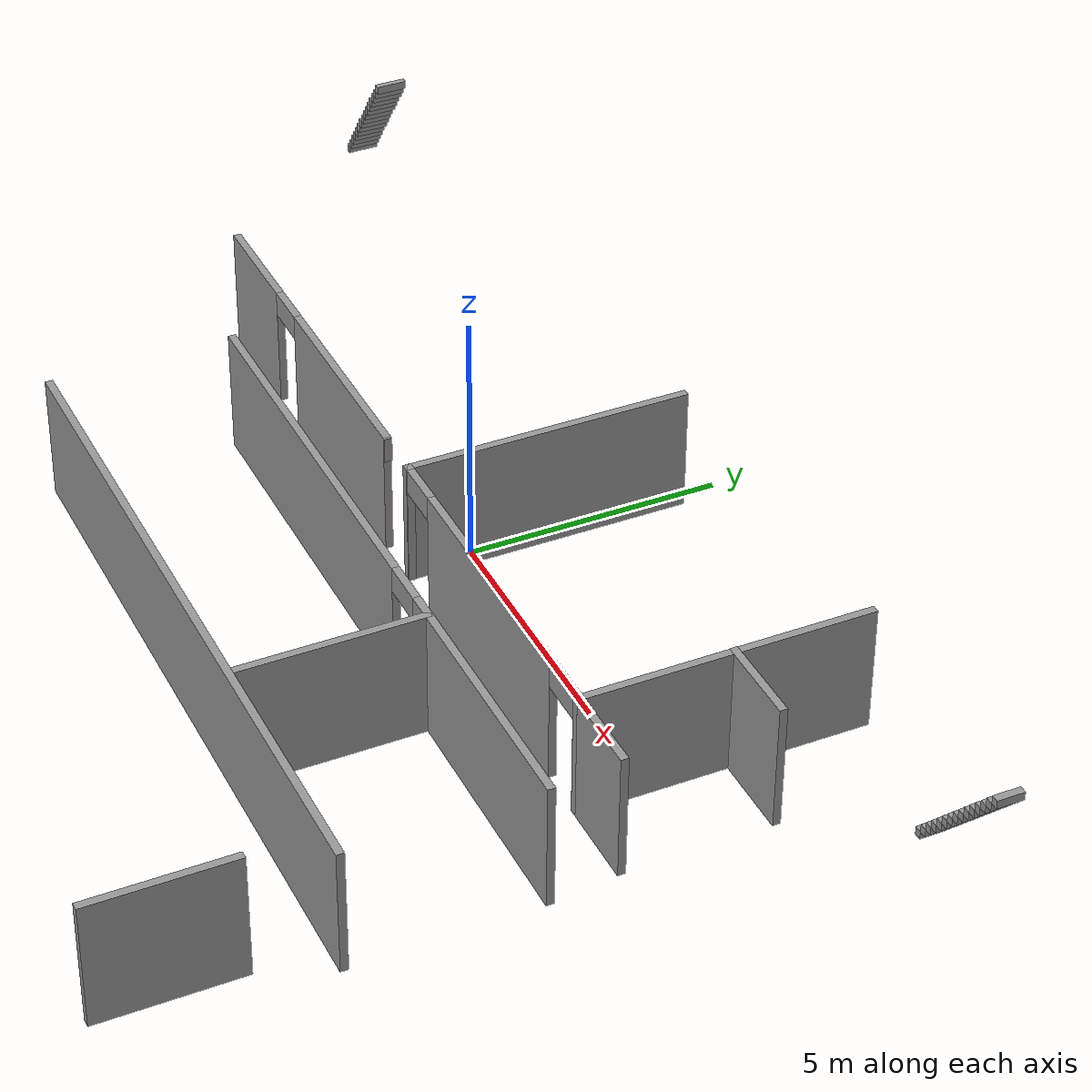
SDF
<sdf version="1.6">
 <model name="deh_f1">
  <pose>-0.995568 -3.05257 0 0 -0 0</pose>
  <link name="Stairs_1">
   <visual name="Stairs_1_Visual_0">
    <pose>-13.1163 6.81612 0.083333 0 -0 1.5708</pose>
    <geometry><box><size>0.63499 0.119775 0.166667</size></box></geometry>
    <material>
     <script><uri>file://media/materials/scripts/gazebo.material</uri><name>Gazebo/Grey</name></script>
     <ambient>1 1 1 1</ambient>
    </material>
   </visual>
   <collision name="Stairs_1_Collision_0">
    <geometry><box><size>0.63499 0.119775 0.166667</size></box></geometry>
    <pose>-13.1163 6.81612 0.083333 0 -0 1.5708</pose>
   </collision>
   <visual name="Stairs_1_Visual_1">
    <pose>-12.9965 6.81612 0.25 0 -0 1.5708</pose>
    <geometry><box><size>0.63499 0.119775 0.166667</size></box></geometry>
    <material>
     <script><uri>file://media/materials/scripts/gazebo.material</uri><name>Gazebo/Grey</name></script>
     <ambient>1 1 1 1</ambient>
    </material>
   </visual>
   <collision name="Stairs_1_Collision_1">
    <geometry><box><size>0.63499 0.119775 0.166667</size></box></geometry>
    <pose>-12.9965 6.81612 0.25 0 -0 1.5708</pose>
   </collision>
   <visual name="Stairs_1_Visual_2">
    <pose>-12.8767 6.81612 0.416667 0 -0 1.5708</pose>
    <geometry><box><size>0.63499 0.119775 0.166667</size></box></geometry>
    <material>
     <script><uri>file://media/materials/scripts/gazebo.material</uri><name>Gazebo/Grey</name></script>
     <ambient>1 1 1 1</ambient>
    </material>
   </visual>
   <collision name="Stairs_1_Collision_2">
    <geometry><box><size>0.63499 0.119775 0.166667</size></box></geometry>
    <pose>-12.8767 6.81612 0.416667 0 -0 1.5708</pose>
   </collision>
   <visual name="Stairs_1_Visual_3">
    <pose>-12.757 6.81612 0.583333 0 -0 1.5708</pose>
    <geometry><box><size>0.63499 0.119775 0.166667</size></box></geometry>
    <material>
     <script><uri>file://media/materials/scripts/gazebo.material</uri><name>Gazebo/Grey</name></script>
     <ambient>1 1 1 1</ambient>
    </material>
   </visual>
   <collision name="Stairs_1_Collision_3">
    <geometry><box><size>0.63499 0.119775 0.166667</size></box></geometry>
    <pose>-12.757 6.81612 0.583333 0 -0 1.5708</pose>
   </collision>
   <visual name="Stairs_1_Visual_4">
    <pose>-12.6372 6.81612 0.75 0 -0 1.5708</pose>
    <geometry><box><size>0.63499 0.119775 0.166667</size></box></geometry>
    <material>
     <script><uri>file://media/materials/scripts/gazebo.material</uri><name>Gazebo/Grey</name></script>
     <ambient>1 1 1 1</ambient>
    </material>
   </visual>
   <collision name="Stairs_1_Collision_4">
    <geometry><box><size>0.63499 0.119775 0.166667</size></box></geometry>
    <pose>-12.6372 6.81612 0.75 0 -0 1.5708</pose>
   </collision>
   <visual name="Stairs_1_Visual_5">
    <pose>-12.5174 6.81612 0.916667 0 -0 1.5708</pose>
    <geometry><box><size>0.63499 0.119775 0.166667</size></box></geometry>
    <material>
     <script><uri>file://media/materials/scripts/gazebo.material</uri><name>Gazebo/Grey</name></script>
     <ambient>1 1 1 1</ambient>
    </material>
   </visual>
   <collision name="Stairs_1_Collision_5">
    <geometry><box><size>0.63499 0.119775 0.166667</size></box></geometry>
    <pose>-12.5174 6.81612 0.916667 0 -0 1.5708</pose>
   </collision>
   <visual name="Stairs_1_Visual_6">
    <pose>-12.3976 6.81612 1.08333 0 -0 1.5708</pose>
    <geometry><box><size>0.63499 0.119775 0.166667</size></box></geometry>
    <material>
     <script><uri>file://media/materials/scripts/gazebo.material</uri><name>Gazebo/Grey</name></script>
     <ambient>1 1 1 1</ambient>
    </material>
   </visual>
   <collision name="Stairs_1_Collision_6">
    <geometry><box><size>0.63499 0.119775 0.166667</size></box></geometry>
    <pose>-12.3976 6.81612 1.08333 0 -0 1.5708</pose>
   </collision>
   <visual name="Stairs_1_Visual_7">
    <pose>-12.2779 6.81612 1.25 0 -0 1.5708</pose>
    <geometry><box><size>0.63499 0.119775 0.166667</size></box></geometry>
    <material>
     <script><uri>file://media/materials/scripts/gazebo.material</uri><name>Gazebo/Grey</name></script>
     <ambient>1 1 1 1</ambient>
    </material>
   </visual>
   <collision name="Stairs_1_Collision_7">
    <geometry><box><size>0.63499 0.119775 0.166667</size></box></geometry>
    <pose>-12.2779 6.81612 1.25 0 -0 1.5708</pose>
   </collision>
   <visual name="Stairs_1_Visual_8">
    <pose>-12.1581 6.81612 1.41667 0 -0 1.5708</pose>
    <geometry><box><size>0.63499 0.119775 0.166667</size></box></geometry>
    <material>
     <script><uri>file://media/materials/scripts/gazebo.material</uri><name>Gazebo/Grey</name></script>
     <ambient>1 1 1 1</ambient>
    </material>
   </visual>
   <collision name="Stairs_1_Collision_8">
    <geometry><box><size>0.63499 0.119775 0.166667</size></box></geometry>
    <pose>-12.1581 6.81612 1.41667 0 -0 1.5708</pose>
   </collision>
   <visual name="Stairs_1_Visual_9">
    <pose>-12.0383 6.81612 1.58333 0 -0 1.5708</pose>
    <geometry><box><size>0.63499 0.119775 0.166667</size></box></geometry>
    <material>
     <script><uri>file://media/materials/scripts/gazebo.material</uri><name>Gazebo/Grey</name></script>
     <ambient>1 1 1 1</ambient>
    </material>
   </visual>
   <collision name="Stairs_1_Collision_9">
    <geometry><box><size>0.63499 0.119775 0.166667</size></box></geometry>
    <pose>-12.0383 6.81612 1.58333 0 -0 1.5708</pose>
   </collision>
   <visual name="Stairs_1_Visual_10">
    <pose>-11.9185 6.81612 1.75 0 -0 1.5708</pose>
    <geometry><box><size>0.63499 0.119775 0.166667</size></box></geometry>
    <material>
     <script><uri>file://media/materials/scripts/gazebo.material</uri><name>Gazebo/Grey</name></script>
     <ambient>1 1 1 1</ambient>
    </material>
   </visual>
   <collision name="Stairs_1_Collision_10">
    <geometry><box><size>0.63499 0.119775 0.166667</size></box></geometry>
    <pose>-11.9185 6.81612 1.75 0 -0 1.5708</pose>
   </collision>
   <visual name="Stairs_1_Visual_11">
    <pose>-11.7988 6.81612 1.91667 0 -0 1.5708</pose>
    <geometry><box><size>0.63499 0.119775 0.166667</size></box></geometry>
    <material>
     <script><uri>file://media/materials/scripts/gazebo.material</uri><name>Gazebo/Grey</name></script>
     <ambient>1 1 1 1</ambient>
    </material>
   </visual>
   <collision name="Stairs_1_Collision_11">
    <geometry><box><size>0.63499 0.119775 0.166667</size></box></geometry>
    <pose>-11.7988 6.81612 1.91667 0 -0 1.5708</pose>
   </collision>
   <visual name="Stairs_1_Visual_12">
    <pose>-11.679 6.81612 2.08333 0 -0 1.5708</pose>
    <geometry><box><size>0.63499 0.119775 0.166667</size></box></geometry>
    <material>
     <script><uri>file://media/materials/scripts/gazebo.material</uri><name>Gazebo/Grey</name></script>
     <ambient>1 1 1 1</ambient>
    </material>
   </visual>
   <collision name="Stairs_1_Collision_12">
    <geometry><box><size>0.63499 0.119775 0.166667</size></box></geometry>
    <pose>-11.679 6.81612 2.08333 0 -0 1.5708</pose>
   </collision>
   <visual name="Stairs_1_Visual_13">
    <pose>-11.5592 6.81612 2.25 0 -0 1.5708</pose>
    <geometry><box><size>0.63499 0.119775 0.166667</size></box></geometry>
    <material>
     <script><uri>file://media/materials/scripts/gazebo.material</uri><name>Gazebo/Grey</name></script>
     <ambient>1 1 1 1</ambient>
    </material>
   </visual>
   <collision name="Stairs_1_Collision_13">
    <geometry><box><size>0.63499 0.119775 0.166667</size></box></geometry>
    <pose>-11.5592 6.81612 2.25 0 -0 1.5708</pose>
   </collision>
   <visual name="Stairs_1_Visual_14">
    <pose>-11.4394 6.81612 2.41667 0 -0 1.5708</pose>
    <geometry><box><size>0.63499 0.119775 0.166667</size></box></geometry>
    <material>
     <script><uri>file://media/materials/scripts/gazebo.material</uri><name>Gazebo/Grey</name></script>
     <ambient>1 1 1 1</ambient>
    </material>
   </visual>
   <collision name="Stairs_1_Collision_14">
    <geometry><box><size>0.63499 0.119775 0.166667</size></box></geometry>
    <pose>-11.4394 6.81612 2.41667 0 -0 1.5708</pose>
   </collision>
  </link>
  <link name="Stairs_2">
   <visual name="Stairs_2_Visual_0">
    <pose>11.0741 6.86907 0.083333 0 -0 1.5708</pose>
    <geometry><box><size>0.520025 0.144952 0.166667</size></box></geometry>
    <material>
     <script><uri>file://media/materials/scripts/gazebo.material</uri><name>Gazebo/Grey</name></script>
     <ambient>1 1 1 1</ambient>
    </material>
   </visual>
   <collision name="Stairs_2_Collision_0">
    <geometry><box><size>0.520025 0.144952 0.166667</size></box></geometry>
    <pose>11.0741 6.86907 0.083333 0 -0 1.5708</pose>
   </collision>
   <visual name="Stairs_2_Visual_1">
    <pose>11.219 6.86907 0.25 0 -0 1.5708</pose>
    <geometry><box><size>0.520025 0.144952 0.166667</size></box></geometry>
    <material>
     <script><uri>file://media/materials/scripts/gazebo.material</uri><name>Gazebo/Grey</name></script>
     <ambient>1 1 1 1</ambient>
    </material>
   </visual>
   <collision name="Stairs_2_Collision_1">
    <geometry><box><size>0.520025 0.144952 0.166667</size></box></geometry>
    <pose>11.219 6.86907 0.25 0 -0 1.5708</pose>
   </collision>
   <visual name="Stairs_2_Visual_2">
    <pose>11.364 6.86907 0.416667 0 -0 1.5708</pose>
    <geometry><box><size>0.520025 0.144952 0.166667</size></box></geometry>
    <material>
     <script><uri>file://media/materials/scripts/gazebo.material</uri><name>Gazebo/Grey</name></script>
     <ambient>1 1 1 1</ambient>
    </material>
   </visual>
   <collision name="Stairs_2_Collision_2">
    <geometry><box><size>0.520025 0.144952 0.166667</size></box></geometry>
    <pose>11.364 6.86907 0.416667 0 -0 1.5708</pose>
   </collision>
   <visual name="Stairs_2_Visual_3">
    <pose>11.5089 6.86907 0.583333 0 -0 1.5708</pose>
    <geometry><box><size>0.520025 0.144952 0.166667</size></box></geometry>
    <material>
     <script><uri>file://media/materials/scripts/gazebo.material</uri><name>Gazebo/Grey</name></script>
     <ambient>1 1 1 1</ambient>
    </material>
   </visual>
   <collision name="Stairs_2_Collision_3">
    <geometry><box><size>0.520025 0.144952 0.166667</size></box></geometry>
    <pose>11.5089 6.86907 0.583333 0 -0 1.5708</pose>
   </collision>
   <visual name="Stairs_2_Visual_4">
    <pose>11.6539 6.86907 0.75 0 -0 1.5708</pose>
    <geometry><box><size>0.520025 0.144952 0.166667</size></box></geometry>
    <material>
     <script><uri>file://media/materials/scripts/gazebo.material</uri><name>Gazebo/Grey</name></script>
     <ambient>1 1 1 1</ambient>
    </material>
   </visual>
   <collision name="Stairs_2_Collision_4">
    <geometry><box><size>0.520025 0.144952 0.166667</size></box></geometry>
    <pose>11.6539 6.86907 0.75 0 -0 1.5708</pose>
   </collision>
   <visual name="Stairs_2_Visual_5">
    <pose>11.7988 6.86907 0.916667 0 -0 1.5708</pose>
    <geometry><box><size>0.520025 0.144952 0.166667</size></box></geometry>
    <material>
     <script><uri>file://media/materials/scripts/gazebo.material</uri><name>Gazebo/Grey</name></script>
     <ambient>1 1 1 1</ambient>
    </material>
   </visual>
   <collision name="Stairs_2_Collision_5">
    <geometry><box><size>0.520025 0.144952 0.166667</size></box></geometry>
    <pose>11.7988 6.86907 0.916667 0 -0 1.5708</pose>
   </collision>
   <visual name="Stairs_2_Visual_6">
    <pose>11.9438 6.86907 1.08333 0 -0 1.5708</pose>
    <geometry><box><size>0.520025 0.144952 0.166667</size></box></geometry>
    <material>
     <script><uri>file://media/materials/scripts/gazebo.material</uri><name>Gazebo/Grey</name></script>
     <ambient>1 1 1 1</ambient>
    </material>
   </visual>
   <collision name="Stairs_2_Collision_6">
    <geometry><box><size>0.520025 0.144952 0.166667</size></box></geometry>
    <pose>11.9438 6.86907 1.08333 0 -0 1.5708</pose>
   </collision>
   <visual name="Stairs_2_Visual_7">
    <pose>12.0887 6.86907 1.25 0 -0 1.5708</pose>
    <geometry><box><size>0.520025 0.144952 0.166667</size></box></geometry>
    <material>
     <script><uri>file://media/materials/scripts/gazebo.material</uri><name>Gazebo/Grey</name></script>
     <ambient>1 1 1 1</ambient>
    </material>
   </visual>
   <collision name="Stairs_2_Collision_7">
    <geometry><box><size>0.520025 0.144952 0.166667</size></box></geometry>
    <pose>12.0887 6.86907 1.25 0 -0 1.5708</pose>
   </collision>
   <visual name="Stairs_2_Visual_8">
    <pose>12.2337 6.86907 1.41667 0 -0 1.5708</pose>
    <geometry><box><size>0.520025 0.144952 0.166667</size></box></geometry>
    <material>
     <script><uri>file://media/materials/scripts/gazebo.material</uri><name>Gazebo/Grey</name></script>
     <ambient>1 1 1 1</ambient>
    </material>
   </visual>
   <collision name="Stairs_2_Collision_8">
    <geometry><box><size>0.520025 0.144952 0.166667</size></box></geometry>
    <pose>12.2337 6.86907 1.41667 0 -0 1.5708</pose>
   </collision>
   <visual name="Stairs_2_Visual_9">
    <pose>12.3786 6.86907 1.58333 0 -0 1.5708</pose>
    <geometry><box><size>0.520025 0.144952 0.166667</size></box></geometry>
    <material>
     <script><uri>file://media/materials/scripts/gazebo.material</uri><name>Gazebo/Grey</name></script>
     <ambient>1 1 1 1</ambient>
    </material>
   </visual>
   <collision name="Stairs_2_Collision_9">
    <geometry><box><size>0.520025 0.144952 0.166667</size></box></geometry>
    <pose>12.3786 6.86907 1.58333 0 -0 1.5708</pose>
   </collision>
   <visual name="Stairs_2_Visual_10">
    <pose>12.5236 6.86907 1.75 0 -0 1.5708</pose>
    <geometry><box><size>0.520025 0.144952 0.166667</size></box></geometry>
    <material>
     <script><uri>file://media/materials/scripts/gazebo.material</uri><name>Gazebo/Grey</name></script>
     <ambient>1 1 1 1</ambient>
    </material>
   </visual>
   <collision name="Stairs_2_Collision_10">
    <geometry><box><size>0.520025 0.144952 0.166667</size></box></geometry>
    <pose>12.5236 6.86907 1.75 0 -0 1.5708</pose>
   </collision>
   <visual name="Stairs_2_Visual_11">
    <pose>12.6685 6.86907 1.91667 0 -0 1.5708</pose>
    <geometry><box><size>0.520025 0.144952 0.166667</size></box></geometry>
    <material>
     <script><uri>file://media/materials/scripts/gazebo.material</uri><name>Gazebo/Grey</name></script>
     <ambient>1 1 1 1</ambient>
    </material>
   </visual>
   <collision name="Stairs_2_Collision_11">
    <geometry><box><size>0.520025 0.144952 0.166667</size></box></geometry>
    <pose>12.6685 6.86907 1.91667 0 -0 1.5708</pose>
   </collision>
   <visual name="Stairs_2_Visual_12">
    <pose>12.8135 6.86907 2.08333 0 -0 1.5708</pose>
    <geometry><box><size>0.520025 0.144952 0.166667</size></box></geometry>
    <material>
     <script><uri>file://media/materials/scripts/gazebo.material</uri><name>Gazebo/Grey</name></script>
     <ambient>1 1 1 1</ambient>
    </material>
   </visual>
   <collision name="Stairs_2_Collision_12">
    <geometry><box><size>0.520025 0.144952 0.166667</size></box></geometry>
    <pose>12.8135 6.86907 2.08333 0 -0 1.5708</pose>
   </collision>
   <visual name="Stairs_2_Visual_13">
    <pose>12.9584 6.86907 2.25 0 -0 1.5708</pose>
    <geometry><box><size>0.520025 0.144952 0.166667</size></box></geometry>
    <material>
     <script><uri>file://media/materials/scripts/gazebo.material</uri><name>Gazebo/Grey</name></script>
     <ambient>1 1 1 1</ambient>
    </material>
   </visual>
   <collision name="Stairs_2_Collision_13">
    <geometry><box><size>0.520025 0.144952 0.166667</size></box></geometry>
    <pose>12.9584 6.86907 2.25 0 -0 1.5708</pose>
   </collision>
   <visual name="Stairs_2_Visual_14">
    <pose>13.1034 6.86907 2.41667 0 -0 1.5708</pose>
    <geometry><box><size>0.520025 0.144952 0.166667</size></box></geometry>
    <material>
     <script><uri>file://media/materials/scripts/gazebo.material</uri><name>Gazebo/Grey</name></script>
     <ambient>1 1 1 1</ambient>
    </material>
   </visual>
   <collision name="Stairs_2_Collision_14">
    <geometry><box><size>0.520025 0.144952 0.166667</size></box></geometry>
    <pose>13.1034 6.86907 2.41667 0 -0 1.5708</pose>
   </collision>
  </link>
  <link name="Wall_107">
   <collision name="Wall_107_Collision">
    <geometry><box><size>5.62515 0.15 2.5</size></box></geometry>
    <pose>0 0 1.25 0 -0 0</pose>
   </collision>
   <visual name="Wall_107_Visual">
    <pose>0 0 1.25 0 -0 0</pose>
    <geometry><box><size>5.62515 0.15 2.5</size></box></geometry>
    <material>
     <script><uri>file://media/materials/scripts/gazebo.material</uri><name>Gazebo/Grey</name></script>
     <ambient>1 1 1 1</ambient>
    </material>
   </visual>
   <pose>1.21165 4.48247 0 0 0 -1.5708</pose>
  </link>
  <link name="Wall_109">
   <collision name="Wall_109_Collision">
    <geometry><box><size>1.75 0.15 2.5</size></box></geometry>
    <pose>0 0 1.25 0 -0 0</pose>
   </collision>
   <visual name="Wall_109_Visual">
    <pose>0 0 1.25 0 -0 0</pose>
    <geometry><box><size>1.75 0.15 2.5</size></box></geometry>
    <material>
     <script><uri>file://media/materials/scripts/gazebo.material</uri><name>Gazebo/Grey</name></script>
     <ambient>1 1 1 1</ambient>
    </material>
   </visual>
   <pose>8.97986 1.75239 0 0 -0 0</pose>
  </link>
  <link name="Wall_12">
   <collision name="Wall_12_Collision">
    <geometry><box><size>2.75 0.15 2.5</size></box></geometry>
    <pose>0 0 1.25 0 -0 0</pose>
   </collision>
   <visual name="Wall_12_Visual">
    <pose>0 0 1.25 0 -0 0</pose>
    <geometry><box><size>2.75 0.15 2.5</size></box></geometry>
    <material>
     <script><uri>file://media/materials/scripts/gazebo.material</uri><name>Gazebo/Grey</name></script>
     <ambient>1 1 1 1</ambient>
    </material>
   </visual>
   <pose>9.39804 -5.92647 0 0 -0 1.5708</pose>
  </link>
  <link name="Wall_125">
   <collision name="Wall_125_Collision">
    <geometry><box><size>1.75 0.15 2.5</size></box></geometry>
    <pose>0 0 1.25 0 -0 0</pose>
   </collision>
   <visual name="Wall_125_Visual">
    <pose>0 0 1.25 0 -0 0</pose>
    <geometry><box><size>1.75 0.15 2.5</size></box></geometry>
    <material>
     <script><uri>file://media/materials/scripts/gazebo.material</uri><name>Gazebo/Grey</name></script>
     <ambient>1 1 1 1</ambient>
    </material>
   </visual>
   <pose>8.97011 4.62775 0 0 -0 3.14159</pose>
  </link>
  <link name="Wall_127">
   <collision name="Wall_127_Collision">
    <geometry><box><size>14 0.15 2.5</size></box></geometry>
    <pose>0 0 1.25 0 -0 0</pose>
   </collision>
   <visual name="Wall_127_Visual">
    <pose>0 0 1.25 0 -0 0</pose>
    <geometry><box><size>14 0.15 2.5</size></box></geometry>
    <material>
     <script><uri>file://media/materials/scripts/gazebo.material</uri><name>Gazebo/Grey</name></script>
     <ambient>1 1 1 1</ambient>
    </material>
   </visual>
   <pose>3.00654 -3.2072 0 0 -0 0</pose>
  </link>
  <link name="Wall_129">
   <pose>3.00654 0.392797 0 0 -0 3.14159</pose>
   <visual name="Wall_129_Visual_0">
    <pose>-4.33483 0 1.25 0 -0 0</pose>
    <geometry><box><size>5.33035 0.15 2.5</size></box></geometry>
    <material>
     <script><uri>file://media/materials/scripts/gazebo.material</uri><name>Gazebo/Grey</name></script>
     <ambient>1 1 1 1</ambient>
    </material>
   </visual>
   <collision name="Wall_129_Collision_0">
    <geometry><box><size>5.33035 0.15 2.5</size></box></geometry>
    <pose>-4.33483 0 1.25 0 -0 0</pose>
   </collision>
   <visual name="Wall_129_Visual_1">
    <pose>3.11517 0 1.25 0 -0 0</pose>
    <geometry><box><size>7.76965 0.15 2.5</size></box></geometry>
    <material>
     <script><uri>file://media/materials/scripts/gazebo.material</uri><name>Gazebo/Grey</name></script>
     <ambient>1 1 1 1</ambient>
    </material>
   </visual>
   <collision name="Wall_129_Collision_1">
    <geometry><box><size>7.76965 0.15 2.5</size></box></geometry>
    <pose>3.11517 0 1.25 0 -0 0</pose>
   </collision>
   <visual name="Wall_129_Visual_2">
    <pose>-1.21965 0 2.25 0 -0 0</pose>
    <geometry><box><size>0.9 0.15 0.5</size></box></geometry>
    <material>
     <script><uri>file://media/materials/scripts/gazebo.material</uri><name>Gazebo/Grey</name></script>
     <ambient>1 1 1 1</ambient>
    </material>
   </visual>
   <collision name="Wall_129_Collision_2">
    <geometry><box><size>0.9 0.15 0.5</size></box></geometry>
    <pose>-1.21965 0 2.25 0 -0 0</pose>
   </collision>
  </link>
  <link name="Wall_132">
   <collision name="Wall_132_Collision">
    <geometry><box><size>3.7189 0.15 2.5</size></box></geometry>
    <pose>0 0 1.25 0 -0 0</pose>
   </collision>
   <visual name="Wall_132_Visual">
    <pose>0 0 1.25 0 -0 0</pose>
    <geometry><box><size>3.7189 0.15 2.5</size></box></geometry>
    <material>
     <script><uri>file://media/materials/scripts/gazebo.material</uri><name>Gazebo/Grey</name></script>
     <ambient>1 1 1 1</ambient>
    </material>
   </visual>
   <pose>5.18263 -1.4209 0 0 0 -1.56951</pose>
  </link>
  <link name="Wall_94">
   <pose>0.504862 1.75239 0 0 -0 0</pose>
   <visual name="Wall_94_Visual_0">
    <pose>-6.61751 0 1.25 0 -0 0</pose>
    <geometry><box><size>2.26499 0.15 2.5</size></box></geometry>
    <material>
     <script><uri>file://media/materials/scripts/gazebo.material</uri><name>Gazebo/Grey</name></script>
     <ambient>1 1 1 1</ambient>
    </material>
   </visual>
   <collision name="Wall_94_Collision_0">
    <geometry><box><size>2.26499 0.15 2.5</size></box></geometry>
    <pose>-6.61751 0 1.25 0 -0 0</pose>
   </collision>
   <visual name="Wall_94_Visual_1">
    <pose>-2.42987 0 1.25 0 -0 0</pose>
    <geometry><box><size>4.31028 0.15 2.5</size></box></geometry>
    <material>
     <script><uri>file://media/materials/scripts/gazebo.material</uri><name>Gazebo/Grey</name></script>
     <ambient>1 1 1 1</ambient>
    </material>
   </visual>
   <collision name="Wall_94_Collision_1">
    <geometry><box><size>4.31028 0.15 2.5</size></box></geometry>
    <pose>-2.42987 0 1.25 0 -0 0</pose>
   </collision>
   <visual name="Wall_94_Visual_2">
    <pose>0.710266 0 1.25 0 -0 0</pose>
    <geometry><box><size>0.17 0.15 2.5</size></box></geometry>
    <material>
     <script><uri>file://media/materials/scripts/gazebo.material</uri><name>Gazebo/Grey</name></script>
     <ambient>1 1 1 1</ambient>
    </material>
   </visual>
   <collision name="Wall_94_Collision_2">
    <geometry><box><size>0.17 0.15 2.5</size></box></geometry>
    <pose>0.710266 0 1.25 0 -0 0</pose>
   </collision>
   <visual name="Wall_94_Visual_3">
    <pose>4.19674 0 1.25 0 -0 0</pose>
    <geometry><box><size>5.00295 0.15 2.5</size></box></geometry>
    <material>
     <script><uri>file://media/materials/scripts/gazebo.material</uri><name>Gazebo/Grey</name></script>
     <ambient>1 1 1 1</ambient>
    </material>
   </visual>
   <collision name="Wall_94_Collision_3">
    <geometry><box><size>5.00295 0.15 2.5</size></box></geometry>
    <pose>4.19674 0 1.25 0 -0 0</pose>
   </collision>
   <visual name="Wall_94_Visual_4">
    <pose>7.67411 0 1.25 0 -0 0</pose>
    <geometry><box><size>0.151786 0.15 2.5</size></box></geometry>
    <material>
     <script><uri>file://media/materials/scripts/gazebo.material</uri><name>Gazebo/Grey</name></script>
     <ambient>1 1 1 1</ambient>
    </material>
   </visual>
   <collision name="Wall_94_Collision_4">
    <geometry><box><size>0.151786 0.15 2.5</size></box></geometry>
    <pose>7.67411 0 1.25 0 -0 0</pose>
   </collision>
   <visual name="Wall_94_Visual_5">
    <pose>-5.03501 0 2.25 0 -0 0</pose>
    <geometry><box><size>0.9 0.15 0.5</size></box></geometry>
    <material>
     <script><uri>file://media/materials/scripts/gazebo.material</uri><name>Gazebo/Grey</name></script>
     <ambient>1 1 1 1</ambient>
    </material>
   </visual>
   <collision name="Wall_94_Collision_5">
    <geometry><box><size>0.9 0.15 0.5</size></box></geometry>
    <pose>-5.03501 0 2.25 0 -0 0</pose>
   </collision>
   <visual name="Wall_94_Visual_6">
    <pose>-0.274734 0 2.25 0 -0 0</pose>
    <geometry><box><size>0.1 0.15 0.5</size></box></geometry>
    <material>
     <script><uri>file://media/materials/scripts/gazebo.material</uri><name>Gazebo/Grey</name></script>
     <ambient>1 1 1 1</ambient>
    </material>
   </visual>
   <collision name="Wall_94_Collision_6">
    <geometry><box><size>0.1 0.15 0.5</size></box></geometry>
    <pose>-0.274734 0 2.25 0 -0 0</pose>
   </collision>
   <visual name="Wall_94_Visual_7">
    <pose>1.24527 0 2.25 0 -0 0</pose>
    <geometry><box><size>0.9 0.15 0.5</size></box></geometry>
    <material>
     <script><uri>file://media/materials/scripts/gazebo.material</uri><name>Gazebo/Grey</name></script>
     <ambient>1 1 1 1</ambient>
    </material>
   </visual>
   <collision name="Wall_94_Collision_7">
    <geometry><box><size>0.9 0.15 0.5</size></box></geometry>
    <pose>1.24527 0 2.25 0 -0 0</pose>
   </collision>
   <visual name="Wall_94_Visual_8">
    <pose>7.14821 0 2.25 0 -0 0</pose>
    <geometry><box><size>0.9 0.15 0.5</size></box></geometry>
    <material>
     <script><uri>file://media/materials/scripts/gazebo.material</uri><name>Gazebo/Grey</name></script>
     <ambient>1 1 1 1</ambient>
    </material>
   </visual>
   <collision name="Wall_94_Collision_8">
    <geometry><box><size>0.9 0.15 0.5</size></box></geometry>
    <pose>7.14821 0 2.25 0 -0 0</pose>
   </collision>
  </link>
  <link name="Wall_95">
   <collision name="Wall_95_Collision">
    <geometry><box><size>5.61193 0.15 2.5</size></box></geometry>
    <pose>0 0 1.25 0 -0 0</pose>
   </collision>
   <visual name="Wall_95_Visual">
    <pose>0 0 1.25 0 -0 0</pose>
    <geometry><box><size>5.61193 0.15 2.5</size></box></geometry>
    <material>
     <script><uri>file://media/materials/scripts/gazebo.material</uri><name>Gazebo/Grey</name></script>
     <ambient>1 1 1 1</ambient>
    </material>
   </visual>
   <pose>8.18016 4.48324 0 0 -0 1.57069</pose>
  </link>
  <static>1</static>
 </model>
</sdf>
